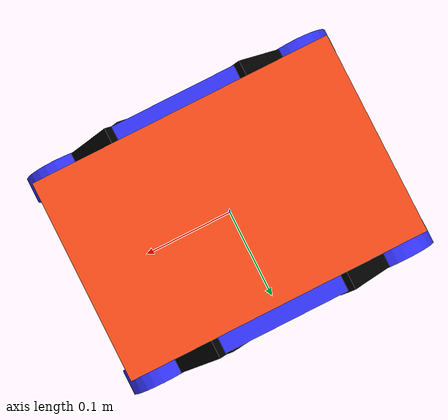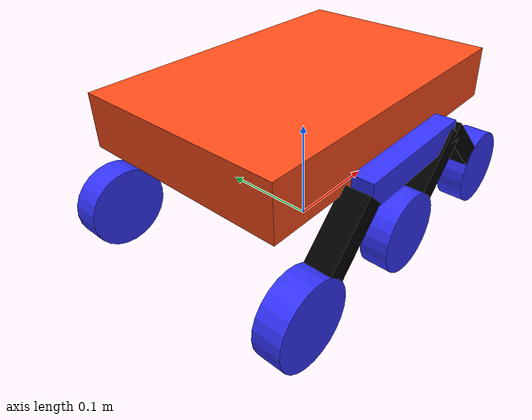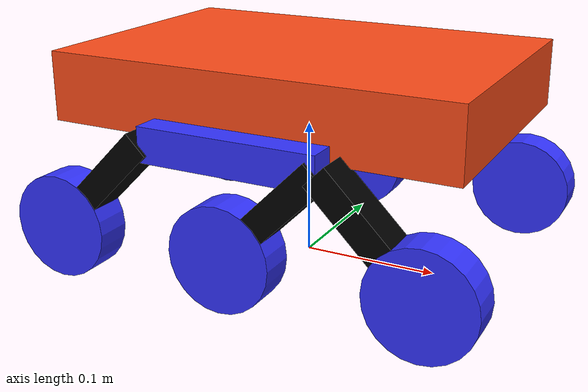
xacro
<?xml version="1.0"?>
<robot xmlns:xacro="http://www.ros.org/wiki/xacro" >

    <xacro:include filename="inertial_macros.xacro"/>

    <xacro:property name="chassis_length" value="0.3"/>
    <xacro:property name="chassis_width" value="0.2"/>
    <xacro:property name="chassis_height" value="0.05"/>
    <xacro:property name="chassis_mass" value="5.0"/>

    <xacro:property name="rocker_length" value="0.13"/>
    <xacro:property name="rocker_width" value="0.02"/>
    <xacro:property name="rocker_height" value="0.2"/>
    <xacro:property name="tilted_link" value="0.1"/>
    <xacro:property name="rocker_mass" value="0.5"/>
    <xacro:property name="wheel_radius" value="0.0375"/>  <!-- 75 mm spiked wheels (2026-10-25); was 0.0239 -->
    <xacro:property name="wheel_thickness" value="0.026"/>
    <xacro:property name="wheel_mass" value="0.05"/>

    <material name="orange">
        <color rgba="1 0.3 0.1 1"/>
    </material>
    <material name="blue">
        <color rgba="0.2 0.2 1 1"/>
    </material>
    <material name="black">
        <color rgba="0 0 0 1"/>
    </material>

    <link name="base_footprint"/>

    <joint name="base_footprint_joint" type="fixed">
        <parent link="base_footprint"/>
        <child link="base_link"/>
        <origin xyz="0 0 0.1082" rpy="0 0 0"/>  <!-- was 0.0946; +0.0136 m for the bigger wheels (0.0375 - 0.0239) -->
    </joint>

    <link name="base_link">
    </link>

    <joint name="chassis_joint" type="fixed">
        <parent link="base_link"/>
        <child link="chassis"/>
        <origin xyz="${-chassis_length/2} 0 0"/>
    </joint>

    <link name="chassis">
        <visual>
            <origin xyz="${chassis_length/2} 0 ${chassis_height/2}"/>
            <geometry>
                <box size="${chassis_length} ${chassis_width} ${chassis_height}"/>
            </geometry>
            <material name="orange"/>
        </visual>
        <collision>
            <origin xyz="${chassis_length/2} 0 ${chassis_height/2}"/>
            <geometry>
                <box size="${chassis_length} ${chassis_width} ${chassis_height}"/>
            </geometry>
        </collision>
        <xacro:inertial_box mass="${chassis_mass}" x="${chassis_length}" y="${chassis_width}" z="${chassis_height}">
            <origin xyz="${chassis_length/2} 0 ${chassis_height/2}" rpy="0 0 0"/>
        </xacro:inertial_box>
    </link>

    <gazebo reference="chassis">
        <material>Gazebo/Orange</material>
    </gazebo>

    <joint name="left_wheel_rocker_joint" type="fixed">
        <parent link="base_link"/>
        <child link="left_rocker"/>
        <origin xyz="0 ${chassis_width/2+rocker_width/2} 0" rpy="0 0 ${pi/2}" />
    </joint>

    <link name="left_rocker">
        <visual>
            <origin xyz="0 0 0" rpy="0 0 ${-pi/2}"/>
            <geometry>
                <box size="${rocker_length} ${rocker_width} 0.025"/>
            </geometry>
            <material name="blue"/>
        </visual>
        <collision>
            <origin xyz="${rocker_length/2} 0 ${rocker_height/2}"/>
            <geometry>
                <box size="${rocker_length} ${rocker_width} ${rocker_height}"/>
            </geometry>
        </collision>
        <xacro:inertial_box mass="${rocker_mass}" x="${rocker_length}" y="${rocker_width}" z="${rocker_height}">
            <origin xyz="${rocker_length/2} 0 ${rocker_height/2}" rpy="0 0 0"/>
        </xacro:inertial_box>
    </link>

    <joint name="tilted_joint" type="fixed">
        <parent link="left_rocker"/>
        <child link="tilted_link"/>
        <origin xyz="0 ${rocker_length/2} 0" rpy="${pi/4} 0 0" />
    </joint>

    <link name="tilted_link">
        <visual>
            <origin xyz="0 0 -${tilted_link/2}" rpy="0 ${pi/2} 0"/>
            <geometry>
                <box size="${tilted_link} ${rocker_width} 0.025"/>
            </geometry>
            <material name="black"/>
        </visual>
        <collision>
            <origin xyz="0 0 -${tilted_link/2}" rpy="0 ${pi/2} 0"/>
            <geometry>
                <box size="${tilted_link} ${rocker_width} 0.025"/>
            </geometry>
        </collision>
        <xacro:inertial_box mass="${rocker_mass}" x="${tilted_link}" y="${rocker_width}" z="0.025">
            <origin xyz="0 0 -${tilted_link/2}" rpy="0 ${pi/2} 0"/>
        </xacro:inertial_box>
    </link>

    <!-- Bogie pivot: TEMPORARILY fixed, see left_wheel_rocker_joint above. -->
    <joint name="left_bogie_joint" type="fixed">
        <parent link="left_rocker"/>
        <child link="left_bogie"/>
        <origin xyz="0 ${-rocker_length/2} 0" rpy="0 0 0" />
    </joint>

    <link name="left_bogie">
        <xacro:inertial_box mass="0.05" x="0.02" y="0.02" z="0.02">
            <origin xyz="0 0 0" rpy="0 0 0"/>
        </xacro:inertial_box>
    </link>

    <joint name="tilted_two_joint" type="fixed">
        <parent link="left_bogie"/>
        <child link="tilted_two_link"/>
        <origin xyz="0 0 0" rpy="${-pi/4} 0 0" />
    </joint>

    <link name="tilted_two_link">
        <visual>
            <origin xyz="0 0 -${tilted_link/2}" rpy="0 ${pi/2} 0"/>
            <geometry>
                <box size="${tilted_link} ${rocker_width} 0.025"/>
            </geometry>
            <material name="black"/>
        </visual>
        <collision>
            <origin xyz="0 0 -${tilted_link/2}" rpy="0 ${pi/2} 0"/>
            <geometry>
                <box size="${tilted_link} ${rocker_width} 0.025"/>
            </geometry>
        </collision>
        <xacro:inertial_box mass="${rocker_mass}" x="${tilted_link}" y="${rocker_width}" z="0.025">
            <origin xyz="0 0 -${tilted_link/2}" rpy="0 ${pi/2} 0"/>
        </xacro:inertial_box>
    </link>

    <joint name="left_wheel_one_joint" type="continuous">
        <parent link="tilted_two_link"/>
        <child link="left_wheel_one"/>
        <origin xyz="0 0 ${-tilted_link + 0.002}" rpy="0 ${pi/2} 0" />
        <axis xyz="0 0 1"/>
    </joint>

    <link name="left_wheel_one">
        <visual>
            <geometry>
                <cylinder radius="${wheel_radius}" length="${wheel_thickness}"/>
            </geometry>
            <material name="blue"/>
        </visual>
        <collision>
            <geometry>
                <sphere radius="${wheel_radius}"/>
            </geometry>
        </collision>
        <xacro:inertial_cylinder mass="${wheel_mass}" length="${wheel_thickness}" radius="${wheel_radius}">
            <origin xyz="0 0 0" rpy="0 0 0"/>
        </xacro:inertial_cylinder>
    </link>

    <gazebo reference="left_wheel_one">
        <material>Gazebo/Blue</material>
    </gazebo>

    <joint name="tilted_three_joint" type="fixed">
        <parent link="left_bogie"/>
        <child link="tilted_three_link"/>
        <origin xyz="0 0 0" rpy="${pi/4} 0 0" />
    </joint>

    <link name="tilted_three_link">
        <visual>
            <origin xyz="0 0 -${tilted_link/2}" rpy="0 ${pi/2} 0"/>
            <geometry>
                <box size="${tilted_link} ${rocker_width} 0.025"/>
            </geometry>
            <material name="black"/>
        </visual>
        <collision>
            <origin xyz="0 0 -${tilted_link/2}" rpy="0 ${pi/2} 0"/>
            <geometry>
                <box size="${tilted_link} ${rocker_width} 0.025"/>
            </geometry>
        </collision>
        <xacro:inertial_box mass="${rocker_mass}" x="${tilted_link}" y="${rocker_width}" z="0.025">
            <origin xyz="0 0 -${tilted_link/2}" rpy="0 ${pi/2} 0"/>
        </xacro:inertial_box>
    </link>

    <joint name="left_wheel_three_joint" type="continuous">
        <parent link="tilted_three_link"/>
        <child link="left_wheel_three"/>
        <origin xyz="0 0 ${-tilted_link + 0.002}" rpy="0 ${pi/2} 0" />
        <axis xyz="0 0 1"/>
    </joint>

    <link name="left_wheel_three">
        <visual>
            <geometry>
                <cylinder radius="${wheel_radius}" length="${wheel_thickness}"/>
            </geometry>
            <material name="blue"/>
        </visual>
        <collision>
            <geometry>
                <sphere radius="${wheel_radius}"/>
            </geometry>
        </collision>
        <xacro:inertial_cylinder mass="${wheel_mass}" length="${wheel_thickness}" radius="${wheel_radius}">
            <origin xyz="0 0 0" rpy="0 0 0"/>
        </xacro:inertial_cylinder>
    </link>

    <gazebo reference="left_wheel_three">
        <material>Gazebo/Blue</material>
    </gazebo>

    <joint name="left_wheel_two_joint" type="continuous">
        <parent link="tilted_link"/>
        <child link="left_wheel_two"/>
        <origin xyz="0 0 ${-tilted_link}" rpy="0 ${pi/2} 0" />
        <axis xyz="0 0 1"/>
    </joint>

    <link name="left_wheel_two">
        <visual>
            <geometry>
                <cylinder radius="${wheel_radius}" length="${wheel_thickness}"/>
            </geometry>
            <material name="blue"/>
        </visual>
        <collision>
            <geometry>
                <sphere radius="${wheel_radius}"/>
            </geometry>
        </collision>
        <xacro:inertial_cylinder mass="${wheel_mass}" length="${wheel_thickness}" radius="${wheel_radius}">
            <origin xyz="0 0 0" rpy="0 0 0"/>
        </xacro:inertial_cylinder>
    </link>

    <gazebo reference="left_wheel_two">
        <material>Gazebo/Blue</material>
        <mu1>0.6</mu1>
        <mu2>0.1</mu2>
        <fdir1>1 0 0</fdir1>
    </gazebo>

    <joint name="right_wheel_rocker_joint" type="fixed">
        <parent link="base_link"/>
        <child link="right_rocker"/>
        <origin xyz="0 ${-chassis_width/2-rocker_width/2} 0" rpy="0 0 ${pi/2}" />
    </joint>

    <link name="right_rocker">
        <visual>
            <origin xyz="0 0 0" rpy="0 0 ${-pi/2}"/>
            <geometry>
                <box size="${rocker_length} ${rocker_width} 0.025"/>
            </geometry>
            <material name="blue"/>
        </visual>
        <collision>
            <origin xyz="${rocker_length/2} 0 ${rocker_height/2}"/>
            <geometry>
                <box size="${rocker_length} ${rocker_width} ${rocker_height}"/>
            </geometry>
        </collision>
        <xacro:inertial_box mass="${rocker_mass}" x="${rocker_length}" y="${rocker_width}" z="${rocker_height}">
            <origin xyz="${rocker_length/2} 0 ${rocker_height/2}" rpy="0 0 0"/>
        </xacro:inertial_box>
    </link>

    <joint name="tilted_joint_two" type="fixed">
        <parent link="right_rocker"/>
        <child link="tilted_link_two"/>
        <origin xyz="0 ${rocker_length/2} 0" rpy="${pi/4} 0 0" />
    </joint>

    <link name="tilted_link_two">
        <visual>
            <origin xyz="0 0 -${tilted_link/2}" rpy="0 ${pi/2} 0"/>
            <geometry>
                <box size="${tilted_link} ${rocker_width} 0.025"/>
            </geometry>
            <material name="black"/>
        </visual>
        <collision>
            <origin xyz="0 0 -${tilted_link/2}" rpy="0 ${pi/2} 0"/>
            <geometry>
                <box size="${tilted_link} ${rocker_width} 0.025"/>
            </geometry>
        </collision>
        <xacro:inertial_box mass="${rocker_mass}" x="${tilted_link}" y="${rocker_width}" z="0.025">
            <origin xyz="0 0 -${tilted_link/2}" rpy="0 ${pi/2} 0"/>
        </xacro:inertial_box>
    </link>

    <joint name="right_bogie_joint" type="fixed">
        <parent link="right_rocker"/>
        <child link="right_bogie"/>
        <origin xyz="0 ${-rocker_length/2} 0" rpy="0 0 0" />
    </joint>

    <link name="right_bogie">
        <xacro:inertial_box mass="0.05" x="0.02" y="0.02" z="0.02">
            <origin xyz="0 0 0" rpy="0 0 0"/>
        </xacro:inertial_box>
    </link>

    <joint name="tilted_two_joint_two" type="fixed">
        <parent link="right_bogie"/>
        <child link="tilted_two_link_two"/>
        <origin xyz="0 0 0" rpy="${-pi/4} 0 0" />
    </joint>

    <link name="tilted_two_link_two">
        <visual>
            <origin xyz="0 0 -${tilted_link/2}" rpy="0 ${pi/2} 0"/>
            <geometry>
                <box size="${tilted_link} ${rocker_width} 0.025"/>
            </geometry>
            <material name="black"/>
        </visual>
        <collision>
            <origin xyz="0 0 -${tilted_link/2}" rpy="0 ${pi/2} 0"/>
            <geometry>
                <box size="${tilted_link} ${rocker_width} 0.025"/>
            </geometry>
        </collision>
        <xacro:inertial_box mass="${rocker_mass}" x="${tilted_link}" y="${rocker_width}" z="0.025">
            <origin xyz="0 0 -${tilted_link/2}" rpy="0 ${pi/2} 0"/>
        </xacro:inertial_box>
    </link>

    <joint name="right_wheel_one_joint" type="continuous">
        <parent link="tilted_two_link_two"/>
        <child link="right_wheel_one"/>
        <origin xyz="0 0 ${-tilted_link + 0.002}" rpy="0 ${pi/2} 0" />
        <axis xyz="0 0 1"/>
    </joint>

    <link name="right_wheel_one">
        <visual>
            <geometry>
                <cylinder radius="${wheel_radius}" length="${wheel_thickness}"/>
            </geometry>
            <material name="blue"/>
        </visual>
        <collision>
            <geometry>
                <sphere radius="${wheel_radius}"/>
            </geometry>
        </collision>
        <xacro:inertial_cylinder mass="${wheel_mass}" length="${wheel_thickness}" radius="${wheel_radius}">
            <origin xyz="0 0 0" rpy="0 0 0"/>
        </xacro:inertial_cylinder>
    </link>

    <gazebo reference="right_wheel_one">
        <material>Gazebo/Blue</material>
    </gazebo>

    <joint name="tilted_two_joint_three" type="fixed">
        <parent link="right_bogie"/>
        <child link="tilted_two_link_three"/>
        <origin xyz="0 0 0" rpy="${pi/4} 0 0" />
    </joint>

    <link name="tilted_two_link_three">
        <visual>
            <origin xyz="0 0 -${tilted_link/2}" rpy="0 ${pi/2} 0"/>
            <geometry>
                <box size="${tilted_link} ${rocker_width} 0.025"/>
            </geometry>
            <material name="black"/>
        </visual>
        <collision>
            <origin xyz="0 0 -${tilted_link/2}" rpy="0 ${pi/2} 0"/>
            <geometry>
                <box size="${tilted_link} ${rocker_width} 0.025"/>
            </geometry>
        </collision>
        <xacro:inertial_box mass="${rocker_mass}" x="${tilted_link}" y="${rocker_width}" z="0.025">
            <origin xyz="0 0 -${tilted_link/2}" rpy="0 ${pi/2} 0"/>
        </xacro:inertial_box>
    </link>

    <joint name="right_wheel_three_joint" type="continuous">
        <parent link="tilted_two_link_three"/>
        <child link="right_wheel_three"/>
        <origin xyz="0 0 ${-tilted_link + 0.002}" rpy="0 ${pi/2} 0" />
        <axis xyz="0 0 1"/>
    </joint>

    <link name="right_wheel_three">
        <visual>
            <geometry>
                <cylinder radius="${wheel_radius}" length="${wheel_thickness}"/>
            </geometry>
            <material name="blue"/>
        </visual>
        <collision>
            <geometry>
                <sphere radius="${wheel_radius}"/>
            </geometry>
        </collision>
        <xacro:inertial_cylinder mass="${wheel_mass}" length="${wheel_thickness}" radius="${wheel_radius}">
            <origin xyz="0 0 0" rpy="0 0 0"/>
        </xacro:inertial_cylinder>
    </link>

    <gazebo reference="right_wheel_three">
        <material>Gazebo/Blue</material>
    </gazebo>

    <joint name="right_wheel_two_joint" type="continuous">
        <parent link="tilted_link_two"/>
        <child link="right_wheel_two"/>
        <origin xyz="0 0 ${-tilted_link}" rpy="0 ${pi/2} 0" />
        <axis xyz="0 0 1"/>
    </joint>

    <link name="right_wheel_two">
        <visual>
            <geometry>
                <cylinder radius="${wheel_radius}" length="${wheel_thickness}"/>
            </geometry>
            <material name="blue"/>
        </visual>
        <collision>
            <geometry>
                <sphere radius="${wheel_radius}"/>
            </geometry>
        </collision>
        <xacro:inertial_cylinder mass="${wheel_mass}" length="${wheel_thickness}" radius="${wheel_radius}">
            <origin xyz="0 0 0" rpy="0 0 0"/>
        </xacro:inertial_cylinder>
    </link>

    <gazebo reference="right_wheel_two">
        <material>Gazebo/Blue</material>
        <mu1>0.6</mu1>
        <mu2>0.1</mu2>
        <fdir1>1 0 0</fdir1>
    </gazebo>

    <gazebo reference="left_wheel_one">
        <mu1>0.6</mu1>      <!-- along rolling direction: keep for climbing -->
        <mu2>0.1</mu2>      <!-- perpendicular/lateral: lower so it can skid to turn -->
        <fdir1>1 0 0</fdir1> <!-- vector defining the "mu1" direction -->
    </gazebo>
    <gazebo reference="left_wheel_three">
        <mu1>0.6</mu1>
        <mu2>0.1</mu2>
        <fdir1>1 0 0</fdir1>
    </gazebo>
    <gazebo reference="right_wheel_one">
        <mu1>0.6</mu1>
        <mu2>0.1</mu2>
        <fdir1>1 0 0</fdir1>
    </gazebo>
    <gazebo reference="right_wheel_three">
        <mu1>0.6</mu1>
        <mu2>0.1</mu2>
        <fdir1>1 0 0</fdir1>
    </gazebo>

</robot>
